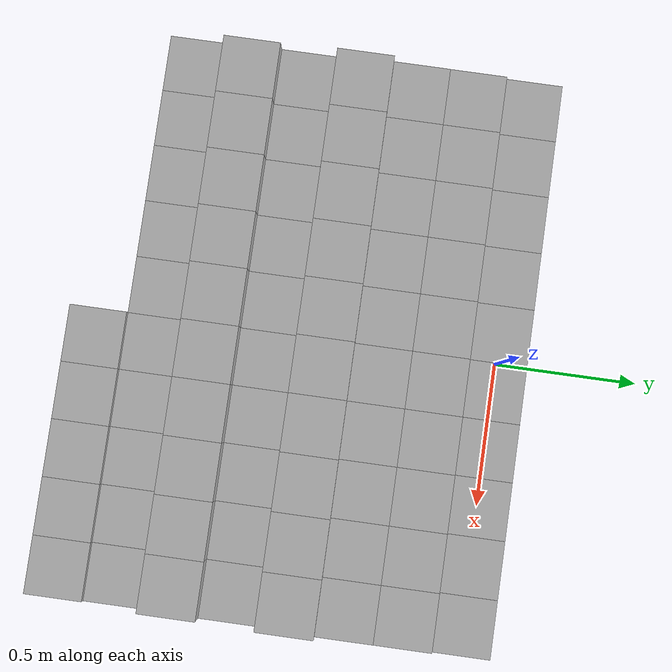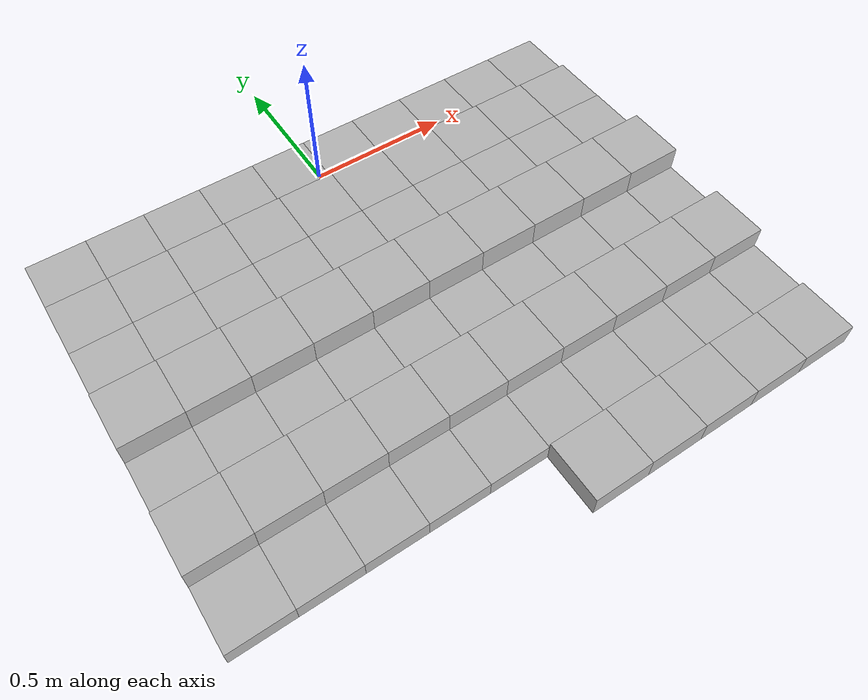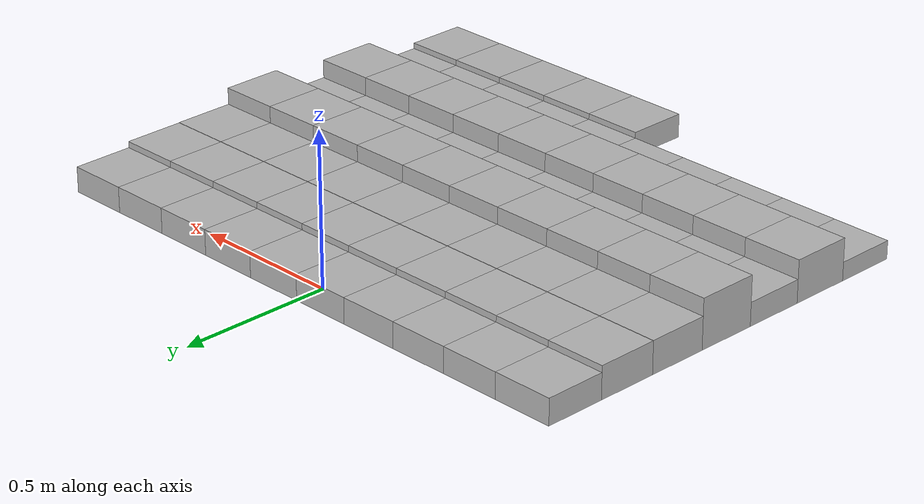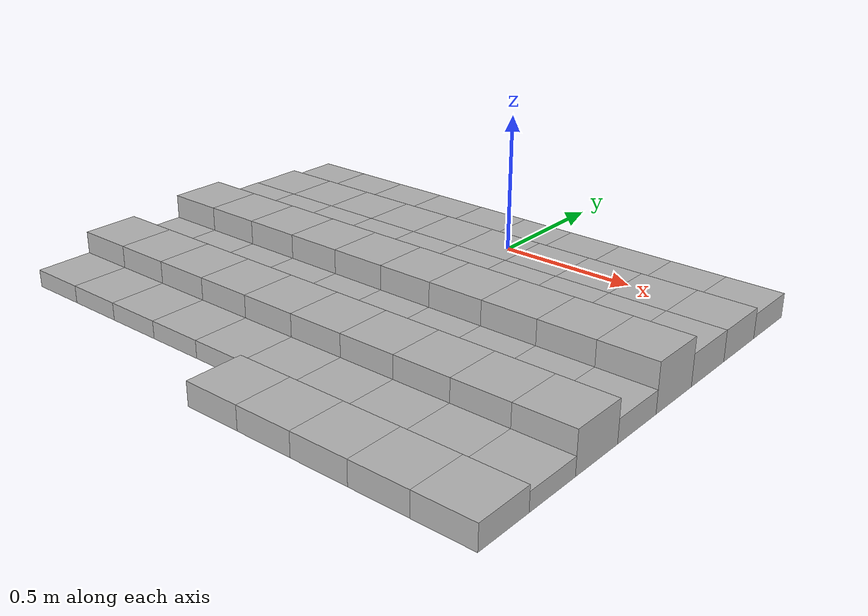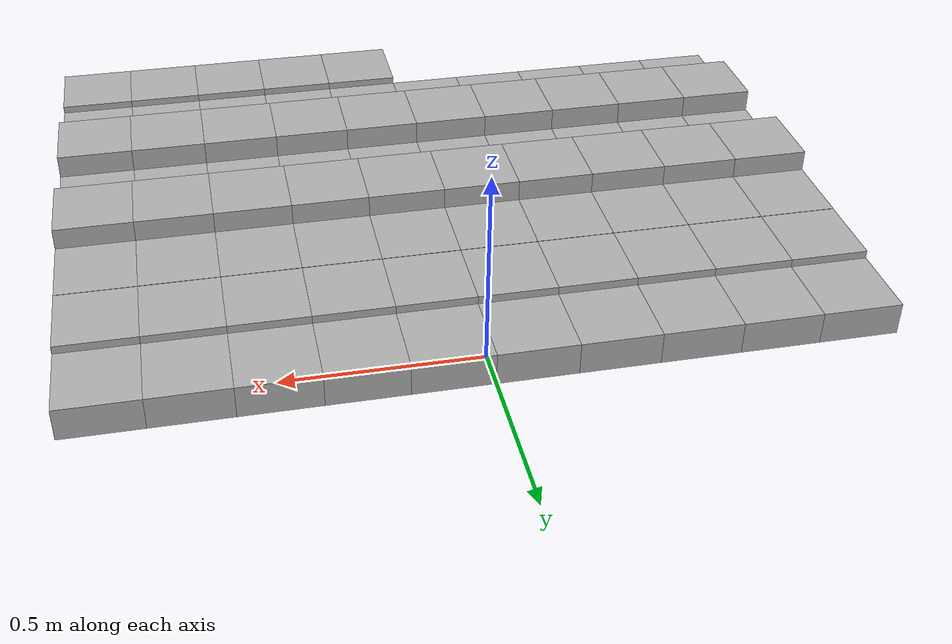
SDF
<sdf version="1.6">
 <model name="Terrain">
  <static>true</static>
  <link name="box_0_0">
   <pose>-0.9 0.0 0.0420578786132 0 0 0</pose>
   <inertial>
    <mass>1.0</mass>
    <inertia><ixx>0.0</ixx><ixy>0.0</ixy><ixz>0.0</ixz><iyy>0.0</iyy><iyz>0.0</iyz><izz>0.0</izz></inertia>
   </inertial>
   <collision name="collision"><geometry><box><size>0.2 0.2 0.0841157572263</size></box></geometry></collision>
   <visual name="visual"><geometry><box><size>0.2 0.2 0.0841157572263</size></box></geometry></visual>
  </link>
  <link name="box_0_1">
   <pose>-0.7 0.0 0.0420578786132 0 0 0</pose>
   <inertial>
    <mass>1.0</mass>
    <inertia><ixx>0.0</ixx><ixy>0.0</ixy><ixz>0.0</ixz><iyy>0.0</iyy><iyz>0.0</iyz><izz>0.0</izz></inertia>
   </inertial>
   <collision name="collision"><geometry><box><size>0.2 0.2 0.0841157572263</size></box></geometry></collision>
   <visual name="visual"><geometry><box><size>0.2 0.2 0.0841157572263</size></box></geometry></visual>
  </link>
  <link name="box_0_2">
   <pose>-0.5 0.0 0.0420578786132 0 0 0</pose>
   <inertial>
    <mass>1.0</mass>
    <inertia><ixx>0.0</ixx><ixy>0.0</ixy><ixz>0.0</ixz><iyy>0.0</iyy><iyz>0.0</iyz><izz>0.0</izz></inertia>
   </inertial>
   <collision name="collision"><geometry><box><size>0.2 0.2 0.0841157572263</size></box></geometry></collision>
   <visual name="visual"><geometry><box><size>0.2 0.2 0.0841157572263</size></box></geometry></visual>
  </link>
  <link name="box_0_3">
   <pose>-0.3 0.0 0.0420578786132 0 0 0</pose>
   <inertial>
    <mass>1.0</mass>
    <inertia><ixx>0.0</ixx><ixy>0.0</ixy><ixz>0.0</ixz><iyy>0.0</iyy><iyz>0.0</iyz><izz>0.0</izz></inertia>
   </inertial>
   <collision name="collision"><geometry><box><size>0.2 0.2 0.0841157572263</size></box></geometry></collision>
   <visual name="visual"><geometry><box><size>0.2 0.2 0.0841157572263</size></box></geometry></visual>
  </link>
  <link name="box_0_4">
   <pose>-0.1 0.0 0.0420578786132 0 0 0</pose>
   <inertial>
    <mass>1.0</mass>
    <inertia><ixx>0.0</ixx><ixy>0.0</ixy><ixz>0.0</ixz><iyy>0.0</iyy><iyz>0.0</iyz><izz>0.0</izz></inertia>
   </inertial>
   <collision name="collision"><geometry><box><size>0.2 0.2 0.0841157572263</size></box></geometry></collision>
   <visual name="visual"><geometry><box><size>0.2 0.2 0.0841157572263</size></box></geometry></visual>
  </link>
  <link name="box_0_5">
   <pose>0.1 0.0 0.0420578786132 0 0 0</pose>
   <inertial>
    <mass>1.0</mass>
    <inertia><ixx>0.0</ixx><ixy>0.0</ixy><ixz>0.0</ixz><iyy>0.0</iyy><iyz>0.0</iyz><izz>0.0</izz></inertia>
   </inertial>
   <collision name="collision"><geometry><box><size>0.2 0.2 0.0841157572263</size></box></geometry></collision>
   <visual name="visual"><geometry><box><size>0.2 0.2 0.0841157572263</size></box></geometry></visual>
  </link>
  <link name="box_0_6">
   <pose>0.3 0.0 0.0420578786132 0 0 0</pose>
   <inertial>
    <mass>1.0</mass>
    <inertia><ixx>0.0</ixx><ixy>0.0</ixy><ixz>0.0</ixz><iyy>0.0</iyy><iyz>0.0</iyz><izz>0.0</izz></inertia>
   </inertial>
   <collision name="collision"><geometry><box><size>0.2 0.2 0.0841157572263</size></box></geometry></collision>
   <visual name="visual"><geometry><box><size>0.2 0.2 0.0841157572263</size></box></geometry></visual>
  </link>
  <link name="box_0_7">
   <pose>0.5 0.0 0.0420578786132 0 0 0</pose>
   <inertial>
    <mass>1.0</mass>
    <inertia><ixx>0.0</ixx><ixy>0.0</ixy><ixz>0.0</ixz><iyy>0.0</iyy><iyz>0.0</iyz><izz>0.0</izz></inertia>
   </inertial>
   <collision name="collision"><geometry><box><size>0.2 0.2 0.0841157572263</size></box></geometry></collision>
   <visual name="visual"><geometry><box><size>0.2 0.2 0.0841157572263</size></box></geometry></visual>
  </link>
  <link name="box_0_8">
   <pose>0.7 0.0 0.0420578786132 0 0 0</pose>
   <inertial>
    <mass>1.0</mass>
    <inertia><ixx>0.0</ixx><ixy>0.0</ixy><ixz>0.0</ixz><iyy>0.0</iyy><iyz>0.0</iyz><izz>0.0</izz></inertia>
   </inertial>
   <collision name="collision"><geometry><box><size>0.2 0.2 0.0841157572263</size></box></geometry></collision>
   <visual name="visual"><geometry><box><size>0.2 0.2 0.0841157572263</size></box></geometry></visual>
  </link>
  <link name="box_0_9">
   <pose>0.9 0.0 0.0420578786132 0 0 0</pose>
   <inertial>
    <mass>1.0</mass>
    <inertia><ixx>0.0</ixx><ixy>0.0</ixy><ixz>0.0</ixz><iyy>0.0</iyy><iyz>0.0</iyz><izz>0.0</izz></inertia>
   </inertial>
   <collision name="collision"><geometry><box><size>0.2 0.2 0.0841157572263</size></box></geometry></collision>
   <visual name="visual"><geometry><box><size>0.2 0.2 0.0841157572263</size></box></geometry></visual>
  </link>
  <link name="box_1_0">
   <pose>-0.9 -0.2 0.0524273136173 0 0 0</pose>
   <inertial>
    <mass>1.0</mass>
    <inertia><ixx>0.0</ixx><ixy>0.0</ixy><ixz>0.0</ixz><iyy>0.0</iyy><iyz>0.0</iyz><izz>0.0</izz></inertia>
   </inertial>
   <collision name="collision"><geometry><box><size>0.2 0.2 0.104854627235</size></box></geometry></collision>
   <visual name="visual"><geometry><box><size>0.2 0.2 0.104854627235</size></box></geometry></visual>
  </link>
  <link name="box_1_1">
   <pose>-0.7 -0.2 0.0524273136173 0 0 0</pose>
   <inertial>
    <mass>1.0</mass>
    <inertia><ixx>0.0</ixx><ixy>0.0</ixy><ixz>0.0</ixz><iyy>0.0</iyy><iyz>0.0</iyz><izz>0.0</izz></inertia>
   </inertial>
   <collision name="collision"><geometry><box><size>0.2 0.2 0.104854627235</size></box></geometry></collision>
   <visual name="visual"><geometry><box><size>0.2 0.2 0.104854627235</size></box></geometry></visual>
  </link>
  <link name="box_1_2">
   <pose>-0.5 -0.2 0.0524273136173 0 0 0</pose>
   <inertial>
    <mass>1.0</mass>
    <inertia><ixx>0.0</ixx><ixy>0.0</ixy><ixz>0.0</ixz><iyy>0.0</iyy><iyz>0.0</iyz><izz>0.0</izz></inertia>
   </inertial>
   <collision name="collision"><geometry><box><size>0.2 0.2 0.104854627235</size></box></geometry></collision>
   <visual name="visual"><geometry><box><size>0.2 0.2 0.104854627235</size></box></geometry></visual>
  </link>
  <link name="box_1_3">
   <pose>-0.3 -0.2 0.0524273136173 0 0 0</pose>
   <inertial>
    <mass>1.0</mass>
    <inertia><ixx>0.0</ixx><ixy>0.0</ixy><ixz>0.0</ixz><iyy>0.0</iyy><iyz>0.0</iyz><izz>0.0</izz></inertia>
   </inertial>
   <collision name="collision"><geometry><box><size>0.2 0.2 0.104854627235</size></box></geometry></collision>
   <visual name="visual"><geometry><box><size>0.2 0.2 0.104854627235</size></box></geometry></visual>
  </link>
  <link name="box_1_4">
   <pose>-0.1 -0.2 0.0524273136173 0 0 0</pose>
   <inertial>
    <mass>1.0</mass>
    <inertia><ixx>0.0</ixx><ixy>0.0</ixy><ixz>0.0</ixz><iyy>0.0</iyy><iyz>0.0</iyz><izz>0.0</izz></inertia>
   </inertial>
   <collision name="collision"><geometry><box><size>0.2 0.2 0.104854627235</size></box></geometry></collision>
   <visual name="visual"><geometry><box><size>0.2 0.2 0.104854627235</size></box></geometry></visual>
  </link>
  <link name="box_1_5">
   <pose>0.1 -0.2 0.0524273136173 0 0 0</pose>
   <inertial>
    <mass>1.0</mass>
    <inertia><ixx>0.0</ixx><ixy>0.0</ixy><ixz>0.0</ixz><iyy>0.0</iyy><iyz>0.0</iyz><izz>0.0</izz></inertia>
   </inertial>
   <collision name="collision"><geometry><box><size>0.2 0.2 0.104854627235</size></box></geometry></collision>
   <visual name="visual"><geometry><box><size>0.2 0.2 0.104854627235</size></box></geometry></visual>
  </link>
  <link name="box_1_6">
   <pose>0.3 -0.2 0.0524273136173 0 0 0</pose>
   <inertial>
    <mass>1.0</mass>
    <inertia><ixx>0.0</ixx><ixy>0.0</ixy><ixz>0.0</ixz><iyy>0.0</iyy><iyz>0.0</iyz><izz>0.0</izz></inertia>
   </inertial>
   <collision name="collision"><geometry><box><size>0.2 0.2 0.104854627235</size></box></geometry></collision>
   <visual name="visual"><geometry><box><size>0.2 0.2 0.104854627235</size></box></geometry></visual>
  </link>
  <link name="box_1_7">
   <pose>0.5 -0.2 0.0524273136173 0 0 0</pose>
   <inertial>
    <mass>1.0</mass>
    <inertia><ixx>0.0</ixx><ixy>0.0</ixy><ixz>0.0</ixz><iyy>0.0</iyy><iyz>0.0</iyz><izz>0.0</izz></inertia>
   </inertial>
   <collision name="collision"><geometry><box><size>0.2 0.2 0.104854627235</size></box></geometry></collision>
   <visual name="visual"><geometry><box><size>0.2 0.2 0.104854627235</size></box></geometry></visual>
  </link>
  <link name="box_1_8">
   <pose>0.7 -0.2 0.0524273136173 0 0 0</pose>
   <inertial>
    <mass>1.0</mass>
    <inertia><ixx>0.0</ixx><ixy>0.0</ixy><ixz>0.0</ixz><iyy>0.0</iyy><iyz>0.0</iyz><izz>0.0</izz></inertia>
   </inertial>
   <collision name="collision"><geometry><box><size>0.2 0.2 0.104854627235</size></box></geometry></collision>
   <visual name="visual"><geometry><box><size>0.2 0.2 0.104854627235</size></box></geometry></visual>
  </link>
  <link name="box_1_9">
   <pose>0.9 -0.2 0.0524273136173 0 0 0</pose>
   <inertial>
    <mass>1.0</mass>
    <inertia><ixx>0.0</ixx><ixy>0.0</ixy><ixz>0.0</ixz><iyy>0.0</iyy><iyz>0.0</iyz><izz>0.0</izz></inertia>
   </inertial>
   <collision name="collision"><geometry><box><size>0.2 0.2 0.104854627235</size></box></geometry></collision>
   <visual name="visual"><geometry><box><size>0.2 0.2 0.104854627235</size></box></geometry></visual>
  </link>
  <link name="box_2_0">
   <pose>-0.9 -0.4 0.0528895784058 0 0 0</pose>
   <inertial>
    <mass>1.0</mass>
    <inertia><ixx>0.0</ixx><ixy>0.0</ixy><ixz>0.0</ixz><iyy>0.0</iyy><iyz>0.0</iyz><izz>0.0</izz></inertia>
   </inertial>
   <collision name="collision"><geometry><box><size>0.2 0.2 0.105779156812</size></box></geometry></collision>
   <visual name="visual"><geometry><box><size>0.2 0.2 0.105779156812</size></box></geometry></visual>
  </link>
  <link name="box_2_1">
   <pose>-0.7 -0.4 0.0528895784058 0 0 0</pose>
   <inertial>
    <mass>1.0</mass>
    <inertia><ixx>0.0</ixx><ixy>0.0</ixy><ixz>0.0</ixz><iyy>0.0</iyy><iyz>0.0</iyz><izz>0.0</izz></inertia>
   </inertial>
   <collision name="collision"><geometry><box><size>0.2 0.2 0.105779156812</size></box></geometry></collision>
   <visual name="visual"><geometry><box><size>0.2 0.2 0.105779156812</size></box></geometry></visual>
  </link>
  <link name="box_2_2">
   <pose>-0.5 -0.4 0.0528895784058 0 0 0</pose>
   <inertial>
    <mass>1.0</mass>
    <inertia><ixx>0.0</ixx><ixy>0.0</ixy><ixz>0.0</ixz><iyy>0.0</iyy><iyz>0.0</iyz><izz>0.0</izz></inertia>
   </inertial>
   <collision name="collision"><geometry><box><size>0.2 0.2 0.105779156812</size></box></geometry></collision>
   <visual name="visual"><geometry><box><size>0.2 0.2 0.105779156812</size></box></geometry></visual>
  </link>
  <link name="box_2_3">
   <pose>-0.3 -0.4 0.0528895784058 0 0 0</pose>
   <inertial>
    <mass>1.0</mass>
    <inertia><ixx>0.0</ixx><ixy>0.0</ixy><ixz>0.0</ixz><iyy>0.0</iyy><iyz>0.0</iyz><izz>0.0</izz></inertia>
   </inertial>
   <collision name="collision"><geometry><box><size>0.2 0.2 0.105779156812</size></box></geometry></collision>
   <visual name="visual"><geometry><box><size>0.2 0.2 0.105779156812</size></box></geometry></visual>
  </link>
  <link name="box_2_4">
   <pose>-0.1 -0.4 0.0528895784058 0 0 0</pose>
   <inertial>
    <mass>1.0</mass>
    <inertia><ixx>0.0</ixx><ixy>0.0</ixy><ixz>0.0</ixz><iyy>0.0</iyy><iyz>0.0</iyz><izz>0.0</izz></inertia>
   </inertial>
   <collision name="collision"><geometry><box><size>0.2 0.2 0.105779156812</size></box></geometry></collision>
   <visual name="visual"><geometry><box><size>0.2 0.2 0.105779156812</size></box></geometry></visual>
  </link>
  <link name="box_2_5">
   <pose>0.1 -0.4 0.0528895784058 0 0 0</pose>
   <inertial>
    <mass>1.0</mass>
    <inertia><ixx>0.0</ixx><ixy>0.0</ixy><ixz>0.0</ixz><iyy>0.0</iyy><iyz>0.0</iyz><izz>0.0</izz></inertia>
   </inertial>
   <collision name="collision"><geometry><box><size>0.2 0.2 0.105779156812</size></box></geometry></collision>
   <visual name="visual"><geometry><box><size>0.2 0.2 0.105779156812</size></box></geometry></visual>
  </link>
  <link name="box_2_6">
   <pose>0.3 -0.4 0.0528895784058 0 0 0</pose>
   <inertial>
    <mass>1.0</mass>
    <inertia><ixx>0.0</ixx><ixy>0.0</ixy><ixz>0.0</ixz><iyy>0.0</iyy><iyz>0.0</iyz><izz>0.0</izz></inertia>
   </inertial>
   <collision name="collision"><geometry><box><size>0.2 0.2 0.105779156812</size></box></geometry></collision>
   <visual name="visual"><geometry><box><size>0.2 0.2 0.105779156812</size></box></geometry></visual>
  </link>
  <link name="box_2_7">
   <pose>0.5 -0.4 0.0528895784058 0 0 0</pose>
   <inertial>
    <mass>1.0</mass>
    <inertia><ixx>0.0</ixx><ixy>0.0</ixy><ixz>0.0</ixz><iyy>0.0</iyy><iyz>0.0</iyz><izz>0.0</izz></inertia>
   </inertial>
   <collision name="collision"><geometry><box><size>0.2 0.2 0.105779156812</size></box></geometry></collision>
   <visual name="visual"><geometry><box><size>0.2 0.2 0.105779156812</size></box></geometry></visual>
  </link>
  <link name="box_2_8">
   <pose>0.7 -0.4 0.0528895784058 0 0 0</pose>
   <inertial>
    <mass>1.0</mass>
    <inertia><ixx>0.0</ixx><ixy>0.0</ixy><ixz>0.0</ixz><iyy>0.0</iyy><iyz>0.0</iyz><izz>0.0</izz></inertia>
   </inertial>
   <collision name="collision"><geometry><box><size>0.2 0.2 0.105779156812</size></box></geometry></collision>
   <visual name="visual"><geometry><box><size>0.2 0.2 0.105779156812</size></box></geometry></visual>
  </link>
  <link name="box_2_9">
   <pose>0.9 -0.4 0.0528895784058 0 0 0</pose>
   <inertial>
    <mass>1.0</mass>
    <inertia><ixx>0.0</ixx><ixy>0.0</ixy><ixz>0.0</ixz><iyy>0.0</iyy><iyz>0.0</iyz><izz>0.0</izz></inertia>
   </inertial>
   <collision name="collision"><geometry><box><size>0.2 0.2 0.105779156812</size></box></geometry></collision>
   <visual name="visual"><geometry><box><size>0.2 0.2 0.105779156812</size></box></geometry></visual>
  </link>
  <link name="box_3_0">
   <pose>-0.9 -0.6 0.0807736139589 0 0 0</pose>
   <inertial>
    <mass>1.0</mass>
    <inertia><ixx>0.0</ixx><ixy>0.0</ixy><ixz>0.0</ixz><iyy>0.0</iyy><iyz>0.0</iyz><izz>0.0</izz></inertia>
   </inertial>
   <collision name="collision"><geometry><box><size>0.2 0.2 0.161547227918</size></box></geometry></collision>
   <visual name="visual"><geometry><box><size>0.2 0.2 0.161547227918</size></box></geometry></visual>
  </link>
  <link name="box_3_1">
   <pose>-0.7 -0.6 0.0807736139589 0 0 0</pose>
   <inertial>
    <mass>1.0</mass>
    <inertia><ixx>0.0</ixx><ixy>0.0</ixy><ixz>0.0</ixz><iyy>0.0</iyy><iyz>0.0</iyz><izz>0.0</izz></inertia>
   </inertial>
   <collision name="collision"><geometry><box><size>0.2 0.2 0.161547227918</size></box></geometry></collision>
   <visual name="visual"><geometry><box><size>0.2 0.2 0.161547227918</size></box></geometry></visual>
  </link>
  <link name="box_3_2">
   <pose>-0.5 -0.6 0.0807736139589 0 0 0</pose>
   <inertial>
    <mass>1.0</mass>
    <inertia><ixx>0.0</ixx><ixy>0.0</ixy><ixz>0.0</ixz><iyy>0.0</iyy><iyz>0.0</iyz><izz>0.0</izz></inertia>
   </inertial>
   <collision name="collision"><geometry><box><size>0.2 0.2 0.161547227918</size></box></geometry></collision>
   <visual name="visual"><geometry><box><size>0.2 0.2 0.161547227918</size></box></geometry></visual>
  </link>
  <link name="box_3_3">
   <pose>-0.3 -0.6 0.0807736139589 0 0 0</pose>
   <inertial>
    <mass>1.0</mass>
    <inertia><ixx>0.0</ixx><ixy>0.0</ixy><ixz>0.0</ixz><iyy>0.0</iyy><iyz>0.0</iyz><izz>0.0</izz></inertia>
   </inertial>
   <collision name="collision"><geometry><box><size>0.2 0.2 0.161547227918</size></box></geometry></collision>
   <visual name="visual"><geometry><box><size>0.2 0.2 0.161547227918</size></box></geometry></visual>
  </link>
  <link name="box_3_4">
   <pose>-0.1 -0.6 0.0807736139589 0 0 0</pose>
   <inertial>
    <mass>1.0</mass>
    <inertia><ixx>0.0</ixx><ixy>0.0</ixy><ixz>0.0</ixz><iyy>0.0</iyy><iyz>0.0</iyz><izz>0.0</izz></inertia>
   </inertial>
   <collision name="collision"><geometry><box><size>0.2 0.2 0.161547227918</size></box></geometry></collision>
   <visual name="visual"><geometry><box><size>0.2 0.2 0.161547227918</size></box></geometry></visual>
  </link>
  <link name="box_3_5">
   <pose>0.1 -0.6 0.0807736139589 0 0 0</pose>
   <inertial>
    <mass>1.0</mass>
    <inertia><ixx>0.0</ixx><ixy>0.0</ixy><ixz>0.0</ixz><iyy>0.0</iyy><iyz>0.0</iyz><izz>0.0</izz></inertia>
   </inertial>
   <collision name="collision"><geometry><box><size>0.2 0.2 0.161547227918</size></box></geometry></collision>
   <visual name="visual"><geometry><box><size>0.2 0.2 0.161547227918</size></box></geometry></visual>
  </link>
  <link name="box_3_6">
   <pose>0.3 -0.6 0.0807736139589 0 0 0</pose>
   <inertial>
    <mass>1.0</mass>
    <inertia><ixx>0.0</ixx><ixy>0.0</ixy><ixz>0.0</ixz><iyy>0.0</iyy><iyz>0.0</iyz><izz>0.0</izz></inertia>
   </inertial>
   <collision name="collision"><geometry><box><size>0.2 0.2 0.161547227918</size></box></geometry></collision>
   <visual name="visual"><geometry><box><size>0.2 0.2 0.161547227918</size></box></geometry></visual>
  </link>
  <link name="box_3_7">
   <pose>0.5 -0.6 0.0807736139589 0 0 0</pose>
   <inertial>
    <mass>1.0</mass>
    <inertia><ixx>0.0</ixx><ixy>0.0</ixy><ixz>0.0</ixz><iyy>0.0</iyy><iyz>0.0</iyz><izz>0.0</izz></inertia>
   </inertial>
   <collision name="collision"><geometry><box><size>0.2 0.2 0.161547227918</size></box></geometry></collision>
   <visual name="visual"><geometry><box><size>0.2 0.2 0.161547227918</size></box></geometry></visual>
  </link>
  <link name="box_3_8">
   <pose>0.7 -0.6 0.0807736139589 0 0 0</pose>
   <inertial>
    <mass>1.0</mass>
    <inertia><ixx>0.0</ixx><ixy>0.0</ixy><ixz>0.0</ixz><iyy>0.0</iyy><iyz>0.0</iyz><izz>0.0</izz></inertia>
   </inertial>
   <collision name="collision"><geometry><box><size>0.2 0.2 0.161547227918</size></box></geometry></collision>
   <visual name="visual"><geometry><box><size>0.2 0.2 0.161547227918</size></box></geometry></visual>
  </link>
  <link name="box_3_9">
   <pose>0.9 -0.6 0.0807736139589 0 0 0</pose>
   <inertial>
    <mass>1.0</mass>
    <inertia><ixx>0.0</ixx><ixy>0.0</ixy><ixz>0.0</ixz><iyy>0.0</iyy><iyz>0.0</iyz><izz>0.0</izz></inertia>
   </inertial>
   <collision name="collision"><geometry><box><size>0.2 0.2 0.161547227918</size></box></geometry></collision>
   <visual name="visual"><geometry><box><size>0.2 0.2 0.161547227918</size></box></geometry></visual>
  </link>
  <link name="box_4_0">
   <pose>-0.9 -0.8 0.0381072717653 0 0 0</pose>
   <inertial>
    <mass>1.0</mass>
    <inertia><ixx>0.0</ixx><ixy>0.0</ixy><ixz>0.0</ixz><iyy>0.0</iyy><iyz>0.0</iyz><izz>0.0</izz></inertia>
   </inertial>
   <collision name="collision"><geometry><box><size>0.2 0.2 0.0762145435307</size></box></geometry></collision>
   <visual name="visual"><geometry><box><size>0.2 0.2 0.0762145435307</size></box></geometry></visual>
  </link>
  <link name="box_4_1">
   <pose>-0.7 -0.8 0.0381072717653 0 0 0</pose>
   <inertial>
    <mass>1.0</mass>
    <inertia><ixx>0.0</ixx><ixy>0.0</ixy><ixz>0.0</ixz><iyy>0.0</iyy><iyz>0.0</iyz><izz>0.0</izz></inertia>
   </inertial>
   <collision name="collision"><geometry><box><size>0.2 0.2 0.0762145435307</size></box></geometry></collision>
   <visual name="visual"><geometry><box><size>0.2 0.2 0.0762145435307</size></box></geometry></visual>
  </link>
  <link name="box_4_2">
   <pose>-0.5 -0.8 0.0381072717653 0 0 0</pose>
   <inertial>
    <mass>1.0</mass>
    <inertia><ixx>0.0</ixx><ixy>0.0</ixy><ixz>0.0</ixz><iyy>0.0</iyy><iyz>0.0</iyz><izz>0.0</izz></inertia>
   </inertial>
   <collision name="collision"><geometry><box><size>0.2 0.2 0.0762145435307</size></box></geometry></collision>
   <visual name="visual"><geometry><box><size>0.2 0.2 0.0762145435307</size></box></geometry></visual>
  </link>
  <link name="box_4_3">
   <pose>-0.3 -0.8 0.0381072717653 0 0 0</pose>
   <inertial>
    <mass>1.0</mass>
    <inertia><ixx>0.0</ixx><ixy>0.0</ixy><ixz>0.0</ixz><iyy>0.0</iyy><iyz>0.0</iyz><izz>0.0</izz></inertia>
   </inertial>
   <collision name="collision"><geometry><box><size>0.2 0.2 0.0762145435307</size></box></geometry></collision>
   <visual name="visual"><geometry><box><size>0.2 0.2 0.0762145435307</size></box></geometry></visual>
  </link>
  <link name="box_4_4">
   <pose>-0.1 -0.8 0.0381072717653 0 0 0</pose>
   <inertial>
    <mass>1.0</mass>
    <inertia><ixx>0.0</ixx><ixy>0.0</ixy><ixz>0.0</ixz><iyy>0.0</iyy><iyz>0.0</iyz><izz>0.0</izz></inertia>
   </inertial>
   <collision name="collision"><geometry><box><size>0.2 0.2 0.0762145435307</size></box></geometry></collision>
   <visual name="visual"><geometry><box><size>0.2 0.2 0.0762145435307</size></box></geometry></visual>
  </link>
  <link name="box_4_5">
   <pose>0.1 -0.8 0.0381072717653 0 0 0</pose>
   <inertial>
    <mass>1.0</mass>
    <inertia><ixx>0.0</ixx><ixy>0.0</ixy><ixz>0.0</ixz><iyy>0.0</iyy><iyz>0.0</iyz><izz>0.0</izz></inertia>
   </inertial>
   <collision name="collision"><geometry><box><size>0.2 0.2 0.0762145435307</size></box></geometry></collision>
   <visual name="visual"><geometry><box><size>0.2 0.2 0.0762145435307</size></box></geometry></visual>
  </link>
  <link name="box_4_6">
   <pose>0.3 -0.8 0.0381072717653 0 0 0</pose>
   <inertial>
    <mass>1.0</mass>
    <inertia><ixx>0.0</ixx><ixy>0.0</ixy><ixz>0.0</ixz><iyy>0.0</iyy><iyz>0.0</iyz><izz>0.0</izz></inertia>
   </inertial>
   <collision name="collision"><geometry><box><size>0.2 0.2 0.0762145435307</size></box></geometry></collision>
   <visual name="visual"><geometry><box><size>0.2 0.2 0.0762145435307</size></box></geometry></visual>
  </link>
  <link name="box_4_7">
   <pose>0.5 -0.8 0.0381072717653 0 0 0</pose>
   <inertial>
    <mass>1.0</mass>
    <inertia><ixx>0.0</ixx><ixy>0.0</ixy><ixz>0.0</ixz><iyy>0.0</iyy><iyz>0.0</iyz><izz>0.0</izz></inertia>
   </inertial>
   <collision name="collision"><geometry><box><size>0.2 0.2 0.0762145435307</size></box></geometry></collision>
   <visual name="visual"><geometry><box><size>0.2 0.2 0.0762145435307</size></box></geometry></visual>
  </link>
  <link name="box_4_8">
   <pose>0.7 -0.8 0.0381072717653 0 0 0</pose>
   <inertial>
    <mass>1.0</mass>
    <inertia><ixx>0.0</ixx><ixy>0.0</ixy><ixz>0.0</ixz><iyy>0.0</iyy><iyz>0.0</iyz><izz>0.0</izz></inertia>
   </inertial>
   <collision name="collision"><geometry><box><size>0.2 0.2 0.0762145435307</size></box></geometry></collision>
   <visual name="visual"><geometry><box><size>0.2 0.2 0.0762145435307</size></box></geometry></visual>
  </link>
  <link name="box_4_9">
   <pose>0.9 -0.8 0.0381072717653 0 0 0</pose>
   <inertial>
    <mass>1.0</mass>
    <inertia><ixx>0.0</ixx><ixy>0.0</ixy><ixz>0.0</ixz><iyy>0.0</iyy><iyz>0.0</iyz><izz>0.0</izz></inertia>
   </inertial>
   <collision name="collision"><geometry><box><size>0.2 0.2 0.0762145435307</size></box></geometry></collision>
   <visual name="visual"><geometry><box><size>0.2 0.2 0.0762145435307</size></box></geometry></visual>
  </link>
  <link name="box_5_0">
   <pose>-0.9 -1.0 0.0689018904055 0 0 0</pose>
   <inertial>
    <mass>1.0</mass>
    <inertia><ixx>0.0</ixx><ixy>0.0</ixy><ixz>0.0</ixz><iyy>0.0</iyy><iyz>0.0</iyz><izz>0.0</izz></inertia>
   </inertial>
   <collision name="collision"><geometry><box><size>0.2 0.2 0.137803780811</size></box></geometry></collision>
   <visual name="visual"><geometry><box><size>0.2 0.2 0.137803780811</size></box></geometry></visual>
  </link>
  <link name="box_5_1">
   <pose>-0.7 -1.0 0.0689018904055 0 0 0</pose>
   <inertial>
    <mass>1.0</mass>
    <inertia><ixx>0.0</ixx><ixy>0.0</ixy><ixz>0.0</ixz><iyy>0.0</iyy><iyz>0.0</iyz><izz>0.0</izz></inertia>
   </inertial>
   <collision name="collision"><geometry><box><size>0.2 0.2 0.137803780811</size></box></geometry></collision>
   <visual name="visual"><geometry><box><size>0.2 0.2 0.137803780811</size></box></geometry></visual>
  </link>
  <link name="box_5_2">
   <pose>-0.5 -1.0 0.0689018904055 0 0 0</pose>
   <inertial>
    <mass>1.0</mass>
    <inertia><ixx>0.0</ixx><ixy>0.0</ixy><ixz>0.0</ixz><iyy>0.0</iyy><iyz>0.0</iyz><izz>0.0</izz></inertia>
   </inertial>
   <collision name="collision"><geometry><box><size>0.2 0.2 0.137803780811</size></box></geometry></collision>
   <visual name="visual"><geometry><box><size>0.2 0.2 0.137803780811</size></box></geometry></visual>
  </link>
  <link name="box_5_3">
   <pose>-0.3 -1.0 0.0689018904055 0 0 0</pose>
   <inertial>
    <mass>1.0</mass>
    <inertia><ixx>0.0</ixx><ixy>0.0</ixy><ixz>0.0</ixz><iyy>0.0</iyy><iyz>0.0</iyz><izz>0.0</izz></inertia>
   </inertial>
   <collision name="collision"><geometry><box><size>0.2 0.2 0.137803780811</size></box></geometry></collision>
   <visual name="visual"><geometry><box><size>0.2 0.2 0.137803780811</size></box></geometry></visual>
  </link>
  <link name="box_5_4">
   <pose>-0.1 -1.0 0.0689018904055 0 0 0</pose>
   <inertial>
    <mass>1.0</mass>
    <inertia><ixx>0.0</ixx><ixy>0.0</ixy><ixz>0.0</ixz><iyy>0.0</iyy><iyz>0.0</iyz><izz>0.0</izz></inertia>
   </inertial>
   <collision name="collision"><geometry><box><size>0.2 0.2 0.137803780811</size></box></geometry></collision>
   <visual name="visual"><geometry><box><size>0.2 0.2 0.137803780811</size></box></geometry></visual>
  </link>
  <link name="box_5_5">
   <pose>0.1 -1.0 0.0689018904055 0 0 0</pose>
   <inertial>
    <mass>1.0</mass>
    <inertia><ixx>0.0</ixx><ixy>0.0</ixy><ixz>0.0</ixz><iyy>0.0</iyy><iyz>0.0</iyz><izz>0.0</izz></inertia>
   </inertial>
   <collision name="collision"><geometry><box><size>0.2 0.2 0.137803780811</size></box></geometry></collision>
   <visual name="visual"><geometry><box><size>0.2 0.2 0.137803780811</size></box></geometry></visual>
  </link>
  <link name="box_5_6">
   <pose>0.3 -1.0 0.0689018904055 0 0 0</pose>
   <inertial>
    <mass>1.0</mass>
    <inertia><ixx>0.0</ixx><ixy>0.0</ixy><ixz>0.0</ixz><iyy>0.0</iyy><iyz>0.0</iyz><izz>0.0</izz></inertia>
   </inertial>
   <collision name="collision"><geometry><box><size>0.2 0.2 0.137803780811</size></box></geometry></collision>
   <visual name="visual"><geometry><box><size>0.2 0.2 0.137803780811</size></box></geometry></visual>
  </link>
  <link name="box_5_7">
   <pose>0.5 -1.0 0.0689018904055 0 0 0</pose>
   <inertial>
    <mass>1.0</mass>
    <inertia><ixx>0.0</ixx><ixy>0.0</ixy><ixz>0.0</ixz><iyy>0.0</iyy><iyz>0.0</iyz><izz>0.0</izz></inertia>
   </inertial>
   <collision name="collision"><geometry><box><size>0.2 0.2 0.137803780811</size></box></geometry></collision>
   <visual name="visual"><geometry><box><size>0.2 0.2 0.137803780811</size></box></geometry></visual>
  </link>
  <link name="box_5_8">
   <pose>0.7 -1.0 0.0689018904055 0 0 0</pose>
   <inertial>
    <mass>1.0</mass>
    <inertia><ixx>0.0</ixx><ixy>0.0</ixy><ixz>0.0</ixz><iyy>0.0</iyy><iyz>0.0</iyz><izz>0.0</izz></inertia>
   </inertial>
   <collision name="collision"><geometry><box><size>0.2 0.2 0.137803780811</size></box></geometry></collision>
   <visual name="visual"><geometry><box><size>0.2 0.2 0.137803780811</size></box></geometry></visual>
  </link>
  <link name="box_5_9">
   <pose>0.9 -1.0 0.0689018904055 0 0 0</pose>
   <inertial>
    <mass>1.0</mass>
    <inertia><ixx>0.0</ixx><ixy>0.0</ixy><ixz>0.0</ixz><iyy>0.0</iyy><iyz>0.0</iyz><izz>0.0</izz></inertia>
   </inertial>
   <collision name="collision"><geometry><box><size>0.2 0.2 0.137803780811</size></box></geometry></collision>
   <visual name="visual"><geometry><box><size>0.2 0.2 0.137803780811</size></box></geometry></visual>
  </link>
  <link name="box_6_0">
   <pose>-0.9 -1.2 0.0301794847527 0 0 0</pose>
   <inertial>
    <mass>1.0</mass>
    <inertia><ixx>0.0</ixx><ixy>0.0</ixy><ixz>0.0</ixz><iyy>0.0</iyy><iyz>0.0</iyz><izz>0.0</izz></inertia>
   </inertial>
   <collision name="collision"><geometry><box><size>0.2 0.2 0.0603589695054</size></box></geometry></collision>
   <visual name="visual"><geometry><box><size>0.2 0.2 0.0603589695054</size></box></geometry></visual>
  </link>
  <link name="box_6_1">
   <pose>-0.7 -1.2 0.0301794847527 0 0 0</pose>
   <inertial>
    <mass>1.0</mass>
    <inertia><ixx>0.0</ixx><ixy>0.0</ixy><ixz>0.0</ixz><iyy>0.0</iyy><iyz>0.0</iyz><izz>0.0</izz></inertia>
   </inertial>
   <collision name="collision"><geometry><box><size>0.2 0.2 0.0603589695054</size></box></geometry></collision>
   <visual name="visual"><geometry><box><size>0.2 0.2 0.0603589695054</size></box></geometry></visual>
  </link>
  <link name="box_6_2">
   <pose>-0.5 -1.2 0.0301794847527 0 0 0</pose>
   <inertial>
    <mass>1.0</mass>
    <inertia><ixx>0.0</ixx><ixy>0.0</ixy><ixz>0.0</ixz><iyy>0.0</iyy><iyz>0.0</iyz><izz>0.0</izz></inertia>
   </inertial>
   <collision name="collision"><geometry><box><size>0.2 0.2 0.0603589695054</size></box></geometry></collision>
   <visual name="visual"><geometry><box><size>0.2 0.2 0.0603589695054</size></box></geometry></visual>
  </link>
  <link name="box_6_3">
   <pose>-0.3 -1.2 0.0301794847527 0 0 0</pose>
   <inertial>
    <mass>1.0</mass>
    <inertia><ixx>0.0</ixx><ixy>0.0</ixy><ixz>0.0</ixz><iyy>0.0</iyy><iyz>0.0</iyz><izz>0.0</izz></inertia>
   </inertial>
   <collision name="collision"><geometry><box><size>0.2 0.2 0.0603589695054</size></box></geometry></collision>
   <visual name="visual"><geometry><box><size>0.2 0.2 0.0603589695054</size></box></geometry></visual>
  </link>
  <link name="box_6_4">
   <pose>-0.1 -1.2 0.0301794847527 0 0 0</pose>
   <inertial>
    <mass>1.0</mass>
    <inertia><ixx>0.0</ixx><ixy>0.0</ixy><ixz>0.0</ixz><iyy>0.0</iyy><iyz>0.0</iyz><izz>0.0</izz></inertia>
   </inertial>
   <collision name="collision"><geometry><box><size>0.2 0.2 0.0603589695054</size></box></geometry></collision>
   <visual name="visual"><geometry><box><size>0.2 0.2 0.0603589695054</size></box></geometry></visual>
  </link>
  <link name="box_6_5">
   <pose>0.1 -1.2 0.0301794847527 0 0 0</pose>
   <inertial>
    <mass>1.0</mass>
    <inertia><ixx>0.0</ixx><ixy>0.0</ixy><ixz>0.0</ixz><iyy>0.0</iyy><iyz>0.0</iyz><izz>0.0</izz></inertia>
   </inertial>
   <collision name="collision"><geometry><box><size>0.2 0.2 0.0603589695054</size></box></geometry></collision>
   <visual name="visual"><geometry><box><size>0.2 0.2 0.0603589695054</size></box></geometry></visual>
  </link>
  <link name="box_6_6">
   <pose>0.3 -1.2 0.0301794847527 0 0 0</pose>
   <inertial>
    <mass>1.0</mass>
    <inertia><ixx>0.0</ixx><ixy>0.0</ixy><ixz>0.0</ixz><iyy>0.0</iyy><iyz>0.0</iyz><izz>0.0</izz></inertia>
   </inertial>
   <collision name="collision"><geometry><box><size>0.2 0.2 0.0603589695054</size></box></geometry></collision>
   <visual name="visual"><geometry><box><size>0.2 0.2 0.0603589695054</size></box></geometry></visual>
  </link>
  <link name="box_6_7">
   <pose>0.5 -1.2 0.0301794847527 0 0 0</pose>
   <inertial>
    <mass>1.0</mass>
    <inertia><ixx>0.0</ixx><ixy>0.0</ixy><ixz>0.0</ixz><iyy>0.0</iyy><iyz>0.0</iyz><izz>0.0</izz></inertia>
   </inertial>
   <collision name="collision"><geometry><box><size>0.2 0.2 0.0603589695054</size></box></geometry></collision>
   <visual name="visual"><geometry><box><size>0.2 0.2 0.0603589695054</size></box></geometry></visual>
  </link>
  <link name="box_6_8">
   <pose>0.7 -1.2 0.0301794847527 0 0 0</pose>
   <inertial>
    <mass>1.0</mass>
    <inertia><ixx>0.0</ixx><ixy>0.0</ixy><ixz>0.0</ixz><iyy>0.0</iyy><iyz>0.0</iyz><izz>0.0</izz></inertia>
   </inertial>
   <collision name="collision"><geometry><box><size>0.2 0.2 0.0603589695054</size></box></geometry></collision>
   <visual name="visual"><geometry><box><size>0.2 0.2 0.0603589695054</size></box></geometry></visual>
  </link>
  <link name="box_6_9">
   <pose>0.9 -1.2 0.0301794847527 0 0 0</pose>
   <inertial>
    <mass>1.0</mass>
    <inertia><ixx>0.0</ixx><ixy>0.0</ixy><ixz>0.0</ixz><iyy>0.0</iyy><iyz>0.0</iyz><izz>0.0</izz></inertia>
   </inertial>
   <collision name="collision"><geometry><box><size>0.2 0.2 0.0603589695054</size></box></geometry></collision>
   <visual name="visual"><geometry><box><size>0.2 0.2 0.0603589695054</size></box></geometry></visual>
  </link>
  <link name="box_7_5">
   <pose>0.1 -1.4 0.0399035328796 0 0 0</pose>
   <inertial>
    <mass>1.0</mass>
    <inertia><ixx>0.0</ixx><ixy>0.0</ixy><ixz>0.0</ixz><iyy>0.0</iyy><iyz>0.0</iyz><izz>0.0</izz></inertia>
   </inertial>
   <collision name="collision"><geometry><box><size>0.2 0.2 0.0798070657593</size></box></geometry></collision>
   <visual name="visual"><geometry><box><size>0.2 0.2 0.0798070657593</size></box></geometry></visual>
  </link>
  <link name="box_7_6">
   <pose>0.3 -1.4 0.0399035328796 0 0 0</pose>
   <inertial>
    <mass>1.0</mass>
    <inertia><ixx>0.0</ixx><ixy>0.0</ixy><ixz>0.0</ixz><iyy>0.0</iyy><iyz>0.0</iyz><izz>0.0</izz></inertia>
   </inertial>
   <collision name="collision"><geometry><box><size>0.2 0.2 0.0798070657593</size></box></geometry></collision>
   <visual name="visual"><geometry><box><size>0.2 0.2 0.0798070657593</size></box></geometry></visual>
  </link>
  <link name="box_7_7">
   <pose>0.5 -1.4 0.0399035328796 0 0 0</pose>
   <inertial>
    <mass>1.0</mass>
    <inertia><ixx>0.0</ixx><ixy>0.0</ixy><ixz>0.0</ixz><iyy>0.0</iyy><iyz>0.0</iyz><izz>0.0</izz></inertia>
   </inertial>
   <collision name="collision"><geometry><box><size>0.2 0.2 0.0798070657593</size></box></geometry></collision>
   <visual name="visual"><geometry><box><size>0.2 0.2 0.0798070657593</size></box></geometry></visual>
  </link>
  <link name="box_7_8">
   <pose>0.7 -1.4 0.0399035328796 0 0 0</pose>
   <inertial>
    <mass>1.0</mass>
    <inertia><ixx>0.0</ixx><ixy>0.0</ixy><ixz>0.0</ixz><iyy>0.0</iyy><iyz>0.0</iyz><izz>0.0</izz></inertia>
   </inertial>
   <collision name="collision"><geometry><box><size>0.2 0.2 0.0798070657593</size></box></geometry></collision>
   <visual name="visual"><geometry><box><size>0.2 0.2 0.0798070657593</size></box></geometry></visual>
  </link>
  <link name="box_7_9">
   <pose>0.9 -1.4 0.0399035328796 0 0 0</pose>
   <inertial>
    <mass>1.0</mass>
    <inertia><ixx>0.0</ixx><ixy>0.0</ixy><ixz>0.0</ixz><iyy>0.0</iyy><iyz>0.0</iyz><izz>0.0</izz></inertia>
   </inertial>
   <collision name="collision"><geometry><box><size>0.2 0.2 0.0798070657593</size></box></geometry></collision>
   <visual name="visual"><geometry><box><size>0.2 0.2 0.0798070657593</size></box></geometry></visual>
  </link>
 </model>
</sdf>
